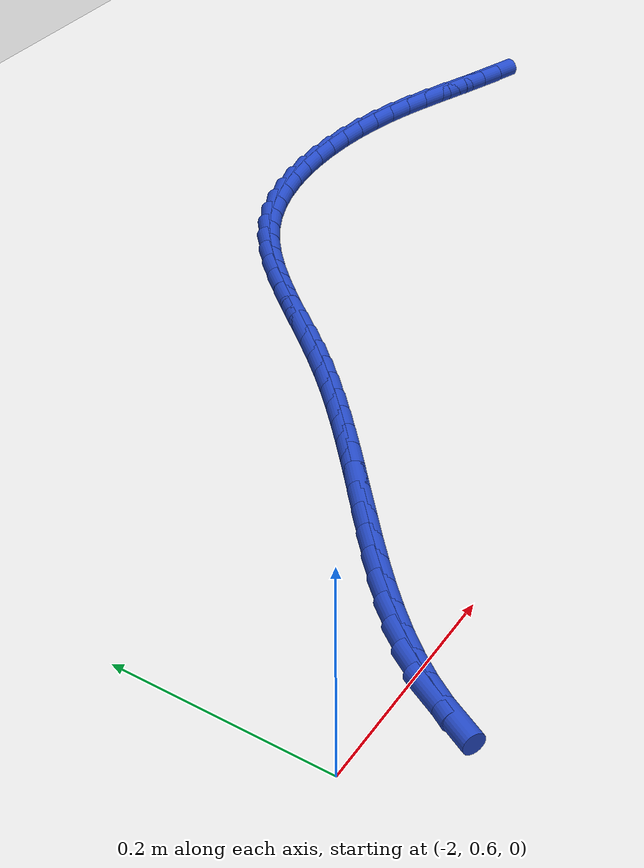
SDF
<sdf version="1.6">
 <world name="default">
  <model name="ground_plane">
   <static>1</static>
   <link name="link">
    <collision name="collision">
     <geometry><plane><normal>0 0 1</normal><size>100 100</size></plane></geometry>
     <surface><friction><ode><mu>100</mu><mu2>50</mu2></ode></friction></surface>
    </collision>
    <visual name="visual">
     <cast_shadows>0</cast_shadows>
     <geometry><plane><normal>0 0 1</normal><size>100 100</size></plane></geometry>
     <material>
      <script><uri>file://media/materials/scripts/gazebo.material</uri><name>Gazebo/WhiteGlow</name></script>
     </material>
    </visual>
   </link>
  </model>
  <model name="line">
   <link name="link_63">
    <pose>-1.0123276168129538 1.011282679034452 0.01 0 1.57 -0.33096117250889795</pose>
    <collision name="collision">
     <geometry><cylinder><radius>0.01</radius><length>0.08</length></cylinder></geometry>
    </collision>
    <visual name="visual">
     <material>
      <script><name>Gazebo/Blue</name><uri>file://media/materials/scripts/gazebo.material</uri></script>
     </material>
     <geometry><cylinder><radius>0.01</radius><length>0.08</length></cylinder></geometry>
    </visual>
   </link>
   <link name="link_64">
    <pose>-1.0364139427718684 1.0195587204488943 0.01 0 1.57 -0.3533919706312554</pose>
    <collision name="collision">
     <geometry><cylinder><radius>0.01</radius><length>0.08</length></cylinder></geometry>
    </collision>
    <visual name="visual">
     <material>
      <script><name>Gazebo/Blue</name><uri>file://media/materials/scripts/gazebo.material</uri></script>
     </material>
     <geometry><cylinder><radius>0.01</radius><length>0.08</length></cylinder></geometry>
    </visual>
   </link>
   <link name="link_65">
    <pose>-1.0605035542030268 1.0284448291377906 0.01 0 1.57 -0.35913186949999143</pose>
    <collision name="collision">
     <geometry><cylinder><radius>0.01</radius><length>0.08</length></cylinder></geometry>
    </collision>
    <visual name="visual">
     <material>
      <script><name>Gazebo/Blue</name><uri>file://media/materials/scripts/gazebo.material</uri></script>
     </material>
     <geometry><cylinder><radius>0.01</radius><length>0.08</length></cylinder></geometry>
    </visual>
   </link>
   <link name="link_66">
    <pose>-1.0847301016409483 1.037539766944409 0.01 0 1.57 -0.3485719746302068</pose>
    <collision name="collision">
     <geometry><cylinder><radius>0.01</radius><length>0.08</length></cylinder></geometry>
    </collision>
    <visual name="visual">
     <material>
      <script><name>Gazebo/Blue</name><uri>file://media/materials/scripts/gazebo.material</uri></script>
     </material>
     <geometry><cylinder><radius>0.01</radius><length>0.08</length></cylinder></geometry>
    </visual>
   </link>
   <link name="link_67">
    <pose>-1.1092272356201514 1.046442295712016 0.01 0 1.57 -0.32205500865566006</pose>
    <collision name="collision">
     <geometry><cylinder><radius>0.01</radius><length>0.08</length></cylinder></geometry>
    </collision>
    <visual name="visual">
     <material>
      <script><name>Gazebo/Blue</name><uri>file://media/materials/scripts/gazebo.material</uri></script>
     </material>
     <geometry><cylinder><radius>0.01</radius><length>0.08</length></cylinder></geometry>
    </visual>
   </link>
   <link name="link_68">
    <pose>-1.1341286066751541 1.0547511772838778 0.01 0 1.57 -0.2799705867764437</pose>
    <collision name="collision">
     <geometry><cylinder><radius>0.01</radius><length>0.08</length></cylinder></geometry>
    </collision>
    <visual name="visual">
     <material>
      <script><name>Gazebo/Blue</name><uri>file://media/materials/scripts/gazebo.material</uri></script>
     </material>
     <geometry><cylinder><radius>0.01</radius><length>0.08</length></cylinder></geometry>
    </visual>
   </link>
   <link name="link_69">
    <pose>-1.1595675850094735 1.06206545544058 0.01 0 1.57 -0.22673129653218235</pose>
    <collision name="collision">
     <geometry><cylinder><radius>0.01</radius><length>0.08</length></cylinder></geometry>
    </collision>
    <visual name="visual">
     <material>
      <script><name>Gazebo/Blue</name><uri>file://media/materials/scripts/gazebo.material</uri></script>
     </material>
     <geometry><cylinder><radius>0.01</radius><length>0.08</length></cylinder></geometry>
    </visual>
   </link>
   <link name="link_70">
    <pose>-1.1855927819748866 1.0680694184885902 0.01 0 1.57 -0.17150591330955095</pose>
    <collision name="collision">
     <geometry><cylinder><radius>0.01</radius><length>0.08</length></cylinder></geometry>
    </collision>
    <visual name="visual">
     <material>
      <script><name>Gazebo/Blue</name><uri>file://media/materials/scripts/gazebo.material</uri></script>
     </material>
     <geometry><cylinder><radius>0.01</radius><length>0.08</length></cylinder></geometry>
    </visual>
   </link>
   <link name="link_71">
    <pose>-1.2120494218525633 1.0726519072271048 0.01 0 1.57 -0.11483001990689436</pose>
    <collision name="collision">
     <geometry><cylinder><radius>0.01</radius><length>0.08</length></cylinder></geometry>
    </collision>
    <visual name="visual">
     <material>
      <script><name>Gazebo/Blue</name><uri>file://media/materials/scripts/gazebo.material</uri></script>
     </material>
     <geometry><cylinder><radius>0.01</radius><length>0.08</length></cylinder></geometry>
    </visual>
   </link>
   <link name="link_72">
    <pose>-1.2387528510008758 1.075731811580707 0.01 0 1.57 -0.05584243535137397</pose>
    <collision name="collision">
     <geometry><cylinder><radius>0.01</radius><length>0.08</length></cylinder></geometry>
    </collision>
    <visual name="visual">
     <material>
      <script><name>Gazebo/Blue</name><uri>file://media/materials/scripts/gazebo.material</uri></script>
     </material>
     <geometry><cylinder><radius>0.01</radius><length>0.08</length></cylinder></geometry>
    </visual>
   </link>
   <link name="link_73">
    <pose>-1.2655184157781951 1.077228021473979 0.01 0 1.57 0.006327819551191566</pose>
    <collision name="collision">
     <geometry><cylinder><radius>0.01</radius><length>0.08</length></cylinder></geometry>
    </collision>
    <visual name="visual">
     <material>
      <script><name>Gazebo/Blue</name><uri>file://media/materials/scripts/gazebo.material</uri></script>
     </material>
     <geometry><cylinder><radius>0.01</radius><length>0.08</length></cylinder></geometry>
    </visual>
   </link>
   <link name="link_74">
    <pose>-1.2921614625428925 1.0770594268315024 0.01 0 1.57 0.07256821238873506</pose>
    <collision name="collision">
     <geometry><cylinder><radius>0.01</radius><length>0.08</length></cylinder></geometry>
    </collision>
    <visual name="visual">
     <material>
      <script><name>Gazebo/Blue</name><uri>file://media/materials/scripts/gazebo.material</uri></script>
     </material>
     <geometry><cylinder><radius>0.01</radius><length>0.08</length></cylinder></geometry>
    </visual>
   </link>
   <link name="link_75">
    <pose>-1.3184973376533395 1.0751449175778605 0.01 0 1.57 0.14377459362379477</pose>
    <collision name="collision">
     <geometry><cylinder><radius>0.01</radius><length>0.08</length></cylinder></geometry>
    </collision>
    <visual name="visual">
     <material>
      <script><name>Gazebo/Blue</name><uri>file://media/materials/scripts/gazebo.material</uri></script>
     </material>
     <geometry><cylinder><radius>0.01</radius><length>0.08</length></cylinder></geometry>
    </visual>
   </link>
   <link name="link_76">
    <pose>-1.344341387467907 1.0714033836376355 0.01 0 1.57 0.2208214256256454</pose>
    <collision name="collision">
     <geometry><cylinder><radius>0.01</radius><length>0.08</length></cylinder></geometry>
    </collision>
    <visual name="visual">
     <material>
      <script><name>Gazebo/Blue</name><uri>file://media/materials/scripts/gazebo.material</uri></script>
     </material>
     <geometry><cylinder><radius>0.01</radius><length>0.08</length></cylinder></geometry>
    </visual>
   </link>
   <link name="link_77">
    <pose>-1.3695089583449664 1.065753714935409 0.01 0 1.57 0.30450141825695626</pose>
    <collision name="collision">
     <geometry><cylinder><radius>0.01</radius><length>0.08</length></cylinder></geometry>
    </collision>
    <visual name="visual">
     <material>
      <script><name>Gazebo/Blue</name><uri>file://media/materials/scripts/gazebo.material</uri></script>
     </material>
     <geometry><cylinder><radius>0.01</radius><length>0.08</length></cylinder></geometry>
    </visual>
   </link>
   <link name="link_78">
    <pose>-1.3938153966428892 1.0581148013957637 0.01 0 1.57 0.3954257776523436</pose>
    <collision name="collision">
     <geometry><cylinder><radius>0.01</radius><length>0.08</length></cylinder></geometry>
    </collision>
    <visual name="visual">
     <material>
      <script><name>Gazebo/Blue</name><uri>file://media/materials/scripts/gazebo.material</uri></script>
     </material>
     <geometry><cylinder><radius>0.01</radius><length>0.08</length></cylinder></geometry>
    </visual>
   </link>
   <link name="link_79">
    <pose>-1.4170760487200467 1.0484055329432829 0.01 0 1.57 0.4937468536548571</pose>
    <collision name="collision">
     <geometry><cylinder><radius>0.01</radius><length>0.08</length></cylinder></geometry>
    </collision>
    <visual name="visual">
     <material>
      <script><name>Gazebo/Blue</name><uri>file://media/materials/scripts/gazebo.material</uri></script>
     </material>
     <geometry><cylinder><radius>0.01</radius><length>0.08</length></cylinder></geometry>
    </visual>
   </link>
   <link name="link_80">
    <pose>-1.4391086671045874 1.036547343047092 0.01 0 1.57 0.5912829091653188</pose>
    <collision name="collision">
     <geometry><cylinder><radius>0.01</radius><length>0.08</length></cylinder></geometry>
    </collision>
    <visual name="visual">
     <material>
      <script><name>Gazebo/Blue</name><uri>file://media/materials/scripts/gazebo.material</uri></script>
     </material>
     <geometry><cylinder><radius>0.01</radius><length>0.08</length></cylinder></geometry>
    </visual>
   </link>
   <link name="link_81">
    <pose>-1.4598695778203687 1.0226081502091975 0.01 0 1.57 0.6748352604560692</pose>
    <collision name="collision">
     <geometry><cylinder><radius>0.01</radius><length>0.08</length></cylinder></geometry>
    </collision>
    <visual name="visual">
     <material>
      <script><name>Gazebo/Blue</name><uri>file://media/materials/scripts/gazebo.material</uri></script>
     </material>
     <geometry><cylinder><radius>0.01</radius><length>0.08</length></cylinder></geometry>
    </visual>
   </link>
   <link name="link_82">
    <pose>-1.479526627403039 1.0068794697238046 0.01 0 1.57 0.7428319996063415</pose>
    <collision name="collision">
     <geometry><cylinder><radius>0.01</radius><length>0.08</length></cylinder></geometry>
    </collision>
    <visual name="visual">
     <material>
      <script><name>Gazebo/Blue</name><uri>file://media/materials/scripts/gazebo.material</uri></script>
     </material>
     <geometry><cylinder><radius>0.01</radius><length>0.08</length></cylinder></geometry>
    </visual>
   </link>
   <link name="link_83">
    <pose>-1.4982654809890754 0.9896716527982566 0.01 0 1.57 0.7955750980526574</pose>
    <collision name="collision">
     <geometry><cylinder><radius>0.01</radius><length>0.08</length></cylinder></geometry>
    </collision>
    <visual name="visual">
     <material>
      <script><name>Gazebo/Blue</name><uri>file://media/materials/scripts/gazebo.material</uri></script>
     </material>
     <geometry><cylinder><radius>0.01</radius><length>0.08</length></cylinder></geometry>
    </visual>
   </link>
   <link name="link_84">
    <pose>-1.5162718037149545 0.9712950506398969 0.01 0 1.57 0.8337486155285195</pose>
    <collision name="collision">
     <geometry><cylinder><radius>0.01</radius><length>0.08</length></cylinder></geometry>
    </collision>
    <visual name="visual">
     <material>
      <script><name>Gazebo/Blue</name><uri>file://media/materials/scripts/gazebo.material</uri></script>
     </material>
     <geometry><cylinder><radius>0.01</radius><length>0.08</length></cylinder></geometry>
    </visual>
   </link>
   <link name="link_85">
    <pose>-1.533731260717153 0.9520600144560672 0.01 0 1.57 0.8580672226418178</pose>
    <collision name="collision">
     <geometry><cylinder><radius>0.01</radius><length>0.08</length></cylinder></geometry>
    </collision>
    <visual name="visual">
     <material>
      <script><name>Gazebo/Blue</name><uri>file://media/materials/scripts/gazebo.material</uri></script>
     </material>
     <geometry><cylinder><radius>0.01</radius><length>0.08</length></cylinder></geometry>
    </visual>
   </link>
   <link name="link_86">
    <pose>-1.5508295171321484 0.9322768954541107 0.01 0 1.57 0.8690635287590277</pose>
    <collision name="collision">
     <geometry><cylinder><radius>0.01</radius><length>0.08</length></cylinder></geometry>
    </collision>
    <visual name="visual">
     <material>
      <script><name>Gazebo/Blue</name><uri>file://media/materials/scripts/gazebo.material</uri></script>
     </material>
     <geometry><cylinder><radius>0.01</radius><length>0.08</length></cylinder></geometry>
    </visual>
   </link>
   <link name="link_87">
    <pose>-1.567752238096417 0.9122560448413707 0.01 0 1.57 0.8669762559247283</pose>
    <collision name="collision">
     <geometry><cylinder><radius>0.01</radius><length>0.08</length></cylinder></geometry>
    </collision>
    <visual name="visual">
     <material>
      <script><name>Gazebo/Blue</name><uri>file://media/materials/scripts/gazebo.material</uri></script>
     </material>
     <geometry><cylinder><radius>0.01</radius><length>0.08</length></cylinder></geometry>
    </visual>
   </link>
   <link name="link_88">
    <pose>-1.5846850887464354 0.8923078138251895 0.01 0 1.57 0.8517046181438237</pose>
    <collision name="collision">
     <geometry><cylinder><radius>0.01</radius><length>0.08</length></cylinder></geometry>
    </collision>
    <visual name="visual">
     <material>
      <script><name>Gazebo/Blue</name><uri>file://media/materials/scripts/gazebo.material</uri></script>
     </material>
     <geometry><cylinder><radius>0.01</radius><length>0.08</length></cylinder></geometry>
    </visual>
   </link>
   <link name="link_89">
    <pose>-1.6018137342186818 0.8727425536129103 0.01 0 1.57 0.824384008729558</pose>
    <collision name="collision">
     <geometry><cylinder><radius>0.01</radius><length>0.08</length></cylinder></geometry>
    </collision>
    <visual name="visual">
     <material>
      <script><name>Gazebo/Blue</name><uri>file://media/materials/scripts/gazebo.material</uri></script>
     </material>
     <geometry><cylinder><radius>0.01</radius><length>0.08</length></cylinder></geometry>
    </visual>
   </link>
   <link name="link_90">
    <pose>-1.6193044247830795 0.85383201077774 0.01 0 1.57 0.7957647250409052</pose>
    <collision name="collision">
     <geometry><cylinder><radius>0.01</radius><length>0.08</length></cylinder></geometry>
    </collision>
    <visual name="visual">
     <material>
      <script><name>Gazebo/Blue</name><uri>file://media/materials/scripts/gazebo.material</uri></script>
     </material>
     <geometry><cylinder><radius>0.01</radius><length>0.08</length></cylinder></geometry>
    </visual>
   </link>
   <link name="link_91">
    <pose>-1.6371863634975574 0.8355754264154809 0.01 0 1.57 0.7708648927763561</pose>
    <collision name="collision">
     <geometry><cylinder><radius>0.01</radius><length>0.08</length></cylinder></geometry>
    </collision>
    <visual name="visual">
     <material>
      <script><name>Gazebo/Blue</name><uri>file://media/materials/scripts/gazebo.material</uri></script>
     </material>
     <geometry><cylinder><radius>0.01</radius><length>0.08</length></cylinder></geometry>
    </visual>
   </link>
   <link name="link_92">
    <pose>-1.6554297612396207 0.8178547412255692 0.01 0 1.57 0.7499726026490244</pose>
    <collision name="collision">
     <geometry><cylinder><radius>0.01</radius><length>0.08</length></cylinder></geometry>
    </collision>
    <visual name="visual">
     <material>
      <script><name>Gazebo/Blue</name><uri>file://media/materials/scripts/gazebo.material</uri></script>
     </material>
     <geometry><cylinder><radius>0.01</radius><length>0.08</length></cylinder></geometry>
    </visual>
   </link>
   <link name="link_93">
    <pose>-1.6740045989530952 0.8005514387059609 0.01 0 1.57 0.7332774618851601</pose>
    <collision name="collision">
     <geometry><cylinder><radius>0.01</radius><length>0.08</length></cylinder></geometry>
    </collision>
    <visual name="visual">
     <material>
      <script><name>Gazebo/Blue</name><uri>file://media/materials/scripts/gazebo.material</uri></script>
     </material>
     <geometry><cylinder><radius>0.01</radius><length>0.08</length></cylinder></geometry>
    </visual>
   </link>
   <link name="link_94">
    <pose>-1.6928808575818055 0.7835470023546116 0.01 0 1.57 0.720893367397261</pose>
    <collision name="collision">
     <geometry><cylinder><radius>0.01</radius><length>0.08</length></cylinder></geometry>
    </collision>
    <visual name="visual">
     <material>
      <script><name>Gazebo/Blue</name><uri>file://media/materials/scripts/gazebo.material</uri></script>
     </material>
     <geometry><cylinder><radius>0.01</radius><length>0.08</length></cylinder></geometry>
    </visual>
   </link>
   <link name="link_95">
    <pose>-1.712028518069575 0.7667229156694771 0.01 0 1.57 0.7128646232330828</pose>
    <collision name="collision">
     <geometry><cylinder><radius>0.01</radius><length>0.08</length></cylinder></geometry>
    </collision>
    <visual name="visual">
     <material>
      <script><name>Gazebo/Blue</name><uri>file://media/materials/scripts/gazebo.material</uri></script>
     </material>
     <geometry><cylinder><radius>0.01</radius><length>0.08</length></cylinder></geometry>
    </visual>
   </link>
   <link name="link_96">
    <pose>-1.7314175613602272 0.7499606621485128 0.01 0 1.57 0.7091727096526631</pose>
    <collision name="collision">
     <geometry><cylinder><radius>0.01</radius><length>0.08</length></cylinder></geometry>
    </collision>
    <visual name="visual">
     <material>
      <script><name>Gazebo/Blue</name><uri>file://media/materials/scripts/gazebo.material</uri></script>
     </material>
     <geometry><cylinder><radius>0.01</radius><length>0.08</length></cylinder></geometry>
    </visual>
   </link>
   <link name="link_97">
    <pose>-1.7510179683975877 0.7331417252896746 0.01 0 1.57 0.7097427655148069</pose>
    <collision name="collision">
     <geometry><cylinder><radius>0.01</radius><length>0.08</length></cylinder></geometry>
    </collision>
    <visual name="visual">
     <material>
      <script><name>Gazebo/Blue</name><uri>file://media/materials/scripts/gazebo.material</uri></script>
     </material>
     <geometry><cylinder><radius>0.01</radius><length>0.08</length></cylinder></geometry>
    </visual>
   </link>
   <link name="link_98">
    <pose>-1.77079972012548 0.7161475885909182 0.01 0 1.57 0.7149586013721019</pose>
    <collision name="collision">
     <geometry><cylinder><radius>0.01</radius><length>0.08</length></cylinder></geometry>
    </collision>
    <visual name="visual">
     <material>
      <script><name>Gazebo/Blue</name><uri>file://media/materials/scripts/gazebo.material</uri></script>
     </material>
     <geometry><cylinder><radius>0.01</radius><length>0.08</length></cylinder></geometry>
    </visual>
   </link>
   <link name="link_99">
    <pose>-1.7907056977565567 0.6988654655414711 0.01 0 1.57 0.7276348392245834</pose>
    <collision name="collision">
     <geometry><cylinder><radius>0.01</radius><length>0.08</length></cylinder></geometry>
    </collision>
    <visual name="visual">
     <material>
      <script><name>Gazebo/Blue</name><uri>file://media/materials/scripts/gazebo.material</uri></script>
     </material>
     <geometry><cylinder><radius>0.01</radius><length>0.08</length></cylinder></geometry>
    </visual>
   </link>
   <link name="link_100">
    <pose>-1.810522023810052 0.681215714828181 0.01 0 1.57 0.7488834858165975</pose>
    <collision name="collision">
     <geometry><cylinder><radius>0.01</radius><length>0.08</length></cylinder></geometry>
    </collision>
    <visual name="visual">
     <material>
      <script><name>Gazebo/Blue</name><uri>file://media/materials/scripts/gazebo.material</uri></script>
     </material>
     <geometry><cylinder><radius>0.01</radius><length>0.08</length></cylinder></geometry>
    </visual>
   </link>
   <link name="link_101">
    <pose>-1.8299785853281798 0.6631305856171947 0.01 0 1.57 0.7790272965898197</pose>
    <collision name="collision">
     <geometry><cylinder><radius>0.01</radius><length>0.08</length></cylinder></geometry>
    </collision>
    <visual name="visual">
     <material>
      <script><name>Gazebo/Blue</name><uri>file://media/materials/scripts/gazebo.material</uri></script>
     </material>
     <geometry><cylinder><radius>0.01</radius><length>0.08</length></cylinder></geometry>
    </visual>
   </link>
   <link name="link_102">
    <pose>-1.8488051968137458 0.6445423424124557 0.01 0 1.57 0.8186230320365345</pose>
    <collision name="collision">
     <geometry><cylinder><radius>0.01</radius><length>0.08</length></cylinder></geometry>
    </collision>
    <visual name="visual">
     <material>
      <script><name>Gazebo/Blue</name><uri>file://media/materials/scripts/gazebo.material</uri></script>
     </material>
     <geometry><cylinder><radius>0.01</radius><length>0.08</length></cylinder></geometry>
    </visual>
   </link>
   <link name="link_103">
    <pose>-1.866731672769554 0.6253832497179085 0.01 0 1.57 0.8684136059245637</pose>
    <collision name="collision">
     <geometry><cylinder><radius>0.01</radius><length>0.08</length></cylinder></geometry>
    </collision>
    <visual name="visual">
     <material>
      <script><name>Gazebo/Blue</name><uri>file://media/materials/scripts/gazebo.material</uri></script>
     </material>
     <geometry><cylinder><radius>0.01</radius><length>0.08</length></cylinder></geometry>
    </visual>
   </link>
   <link name="link_104">
    <pose>-1.8834878276984095 0.6055855720374967 0.01 0 1.57 0.9292442241477346</pose>
    <collision name="collision">
     <geometry><cylinder><radius>0.01</radius><length>0.08</length></cylinder></geometry>
    </collision>
    <visual name="visual">
     <material>
      <script><name>Gazebo/Blue</name><uri>file://media/materials/scripts/gazebo.material</uri></script>
     </material>
     <geometry><cylinder><radius>0.01</radius><length>0.08</length></cylinder></geometry>
    </visual>
   </link>
   <link name="link_105">
    <pose>-1.8988034761031174 0.5850815738751645 0.01 0 1.57 1.001916624690508</pose>
    <collision name="collision">
     <geometry><cylinder><radius>0.01</radius><length>0.08</length></cylinder></geometry>
    </collision>
    <visual name="visual">
     <material>
      <script><name>Gazebo/Blue</name><uri>file://media/materials/scripts/gazebo.material</uri></script>
     </material>
     <geometry><cylinder><radius>0.01</radius><length>0.08</length></cylinder></geometry>
    </visual>
   </link>
   <link name="link_106">
    <pose>-1.9124084324864814 0.5638035197348554 0.01 0 1.57 1.0869538988179717</pose>
    <collision name="collision">
     <geometry><cylinder><radius>0.01</radius><length>0.08</length></cylinder></geometry>
    </collision>
    <visual name="visual">
     <material>
      <script><name>Gazebo/Blue</name><uri>file://media/materials/scripts/gazebo.material</uri></script>
     </material>
     <geometry><cylinder><radius>0.01</radius><length>0.08</length></cylinder></geometry>
    </visual>
   </link>
  </model>
 </world>
</sdf>
